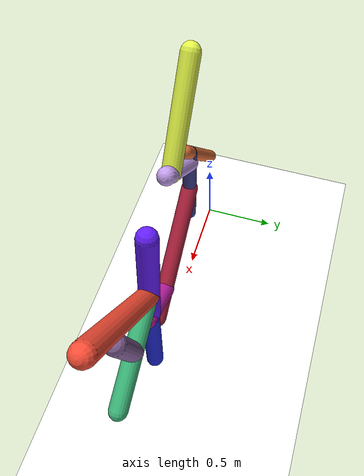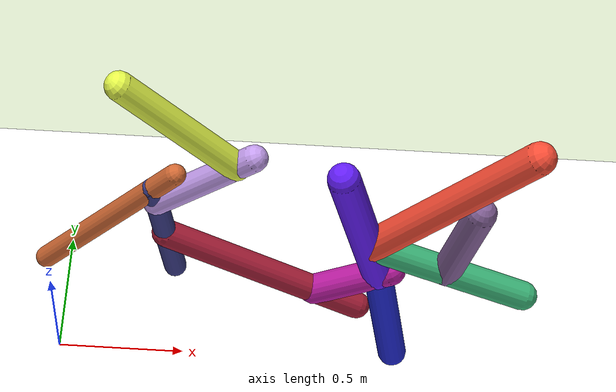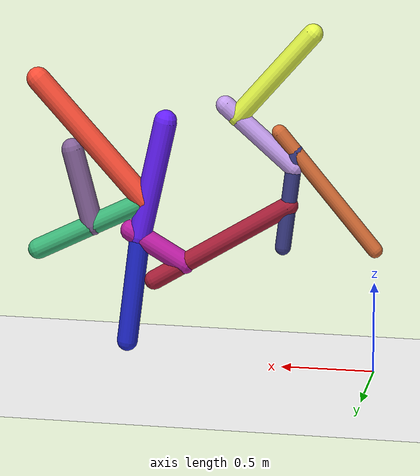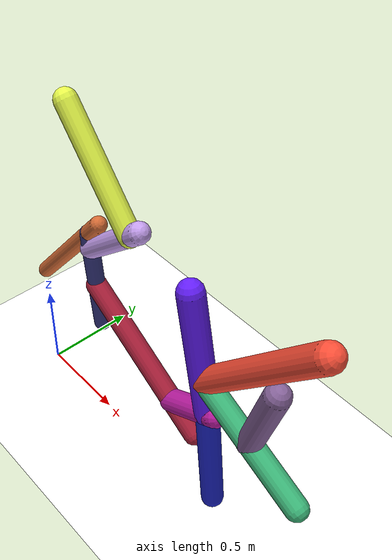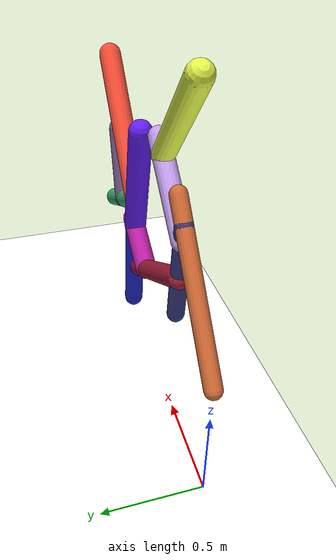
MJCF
<mujoco model="morphology">
  <option timestep="0.01"/>
  <default>
    <default class="/"/>
    <default class="0/"/>
    <default class="0/1/"/>
    <default class="0/1/2/"/>
    <default class="0/1/2/3/"/>
    <default class="0/1/2/3/4/"/>
    <default class="0/1/2/3/4/5/"/>
    <default class="0/1/2/3/4/5/6/"/>
    <default class="0/1/2/3/4/5/7/"/>
    <default class="0/1/2/3/8/"/>
    <default class="0/1/9/"/>
    <default class="0/1/9/10/"/>
  </default>
  <asset>
    <texture name="texplane" type="2d" builtin="checker" rgb1="0.10000000000000001 0.20000000000000001 0.29999999999999999" rgb2="0.20000000000000001 0.29999999999999999 0.40000000000000002" width="300" height="300"/>
    <material name="MatPlane" class="/" texture="texplane" texrepeat="20 20" specular="1" shininess="1" reflectance="0.5"/>
  </asset>
  <worldbody>
    <light name="//unnamed_light_0" class="/" directional="true" pos="0 0 1.5" dir="0 0 -1.3" cutoff="100" exponent="1" diffuse="1 1 1" specular="0.10000000000000001 0.10000000000000001 0.10000000000000001"/>
    <geom name="ground" class="/" type="plane" size="15 15 0.5" material="MatPlane" rgba="1 1 1 1"/>
    <site name="body" class="/" size="9.9999999999999995e-07 9.9999999999999995e-07 9.9999999999999995e-07" pos="0 0 0.68472770452499387"/>
    <body pos="0 0 0.68472770452499387" name="0/">
      <joint name="0/rootx/" class="/" type="slide" axis="1 0 0" limited="false" stiffness="0" armature="0" damping="0"/>
      <joint name="0/rootz/" class="/" type="slide" axis="0 0 1" limited="false" stiffness="0" armature="0" damping="0"/>
      <joint name="0/rooty/" class="/" type="hinge" axis="0 1 0" limited="false" stiffness="0" armature="0" damping="0"/>
      <geom name="0/geom" class="0/" type="capsule" contype="1" conaffinity="1" condim="3" size="0.041212058768549144" rgba="0.83018963351423436 0.41883523808006795 0.20847389496993352 1" friction="0.59999999999999998 0.10000000000000001 0.10000000000000001" fromto="0 0 0 0.51901632084161098 0 0.62548990769737012"/>
      <site name="0/end0" class="0/" size="0.0050000000000000001" pos="0.51901632084161098 0 0.62548990769737012"/>
      <site name="0/attach1" class="0/" size="9.9999999999999995e-07 9.9999999999999995e-07 9.9999999999999995e-07" pos="0.43220344373358316 0 0.52086780563862878"/>
      <body pos="0.43220344373358316 0 0.52086780563862878" name="0/1/">
        <joint name="0/1/joint/" class="0/" type="hinge" axis="0 1 0" limited="true" range="-68.451132867138341 68.451132867138341"/>
        <geom name="0/1/geom" class="0/1/" type="capsule" contype="1" conaffinity="1" condim="3" size="0.042711253315807343" rgba="0.23247382269385131 0.23745641974223375 0.53624611811933354 1" friction="0.59999999999999998 0.10000000000000001 0.10000000000000001" fromto="0 0 0 0.064832744570825995 0 -0.5300096925550315"/>
        <site name="0/1/end1" class="0/1/" size="0.0050000000000000001" pos="0.064832744570825995 0 -0.5300096925550315"/>
        <site name="0/1/attach2" class="0/1/" size="9.9999999999999995e-07 9.9999999999999995e-07 9.9999999999999995e-07" pos="0.036551111596287843 0 -0.29880646805766337"/>
        <body pos="0.036551111596287843 0 -0.29880646805766337" name="0/1/2/">
          <joint name="0/1/2/joint/" class="0/1/" type="hinge" axis="0 1 0" limited="true" range="-63.300547701188549 63.300547701188549"/>
          <geom name="0/1/2/geom" class="0/1/2/" type="capsule" contype="1" conaffinity="1" condim="3" size="0.052908863149111897" rgba="0.66380839651644641 0.12220773544464558 0.22587143090343109 1" friction="0.59999999999999998 0.10000000000000001 0.10000000000000001" fromto="0 0 0 0.73003101790402325 0 -0.4531616211365278"/>
          <site name="0/1/2/end2" class="0/1/2/" size="0.0050000000000000001" pos="0.73003101790402325 0 -0.4531616211365278"/>
          <site name="0/1/2/attach3" class="0/1/2/" size="9.9999999999999995e-07 9.9999999999999995e-07 9.9999999999999995e-07" pos="0.5647555499153869 0 -0.35056803652027063"/>
          <body pos="0.5647555499153869 0 -0.35056803652027063" name="0/1/2/3/">
            <geom name="0/1/2/3/geom" class="0/1/2/3/" type="capsule" contype="1" conaffinity="1" condim="3" size="0.058867451634068216" rgba="0.73649219002325439 0.11163248925774838 0.63678091242998225 1" friction="0.59999999999999998 0.10000000000000001 0.10000000000000001" fromto="0 0 0 0.29096142173472384 0 0.17005381249936913"/>
            <site name="0/1/2/3/end3" class="0/1/2/3/" size="0.0050000000000000001" pos="0.29096142173472384 0 0.17005381249936913"/>
            <site name="0/1/2/3/attach4" class="0/1/2/3/" size="9.9999999999999995e-07 9.9999999999999995e-07 9.9999999999999995e-07" pos="0.24390326231236698 0 0.14255044325108823"/>
            <body pos="0.24390326231236698 0 0.14255044325108823" name="0/1/2/3/4/">
              <joint name="0/1/2/3/4/joint/" class="0/1/2/3/" type="hinge" axis="0 1 0" limited="true" range="-53.8619554987241 53.8619554987241"/>
              <geom name="0/1/2/3/4/geom" class="0/1/2/3/4/" type="capsule" contype="1" conaffinity="1" condim="3" size="0.062577645787015315" rgba="0.39639712089329737 0.11737518273720415 0.99034521360099292 1" friction="0.59999999999999998 0.10000000000000001 0.10000000000000001" fromto="0 0 0 -0.1427345153052445 0 0.64293092772787941"/>
              <site name="0/1/2/3/4/end4" class="0/1/2/3/4/" size="0.0050000000000000001" pos="-0.1427345153052445 0 0.64293092772787941"/>
              <site name="0/1/2/3/4/attach5" class="0/1/2/3/4/" size="9.9999999999999995e-07 9.9999999999999995e-07 9.9999999999999995e-07" pos="-0.045008488732699865 0 0.20273547259862579"/>
              <body pos="-0.045008488732699865 0 0.20273547259862579" name="0/1/2/3/4/5/">
                <joint name="0/1/2/3/4/5/joint/" class="0/1/2/3/4/" type="hinge" axis="0 1 0" limited="true" range="-35.358888998981129 35.358888998981129"/>
                <geom name="0/1/2/3/4/5/geom" class="0/1/2/3/4/5/" type="capsule" contype="1" conaffinity="1" condim="3" size="0.056767312793260374" rgba="0.23657962856694648 0.72356748058596565 0.47967331139213387 1" friction="0.59999999999999998 0.10000000000000001 0.10000000000000001" fromto="0 0 0 0.60558858238879254 0 -0.30553550327737283"/>
                <site name="0/1/2/3/4/5/end5" class="0/1/2/3/4/5/" size="0.0050000000000000001" pos="0.60558858238879254 0 -0.30553550327737283"/>
                <site name="0/1/2/3/4/5/attach6" class="0/1/2/3/4/5/" size="9.9999999999999995e-07 9.9999999999999995e-07 9.9999999999999995e-07" pos="0.013373095677850675 0 -0.0067470814958088994"/>
                <body pos="0.013373095677850675 0 -0.0067470814958088994" name="0/1/2/3/4/5/6/">
                  <joint name="0/1/2/3/4/5/6/joint/" class="0/1/2/3/4/5/" type="hinge" axis="0 1 0" limited="true" range="-52.1940910782657 52.1940910782657"/>
                  <geom name="0/1/2/3/4/5/6/geom" class="0/1/2/3/4/5/6/" type="capsule" contype="1" conaffinity="1" condim="3" size="0.063043057651530343" rgba="0.97977075314847484 0.30414131996817495 0.21226558454403177 1" friction="0.59999999999999998 0.10000000000000001 0.10000000000000001" fromto="0 0 0 0.58153101500107263 0 0.65148342249913327"/>
                  <site name="0/1/2/3/4/5/6/end6" class="0/1/2/3/4/5/6/" size="0.0050000000000000001" pos="0.58153101500107263 0 0.65148342249913327"/>
                </body>
                <site name="0/1/2/3/4/5/attach7" class="0/1/2/3/4/5/" size="9.9999999999999995e-07 9.9999999999999995e-07 9.9999999999999995e-07" pos="0.30535588305799272 0 -0.15406014268104706"/>
                <body pos="0.30535588305799272 0 -0.15406014268104706" name="0/1/2/3/4/5/7/">
                  <joint name="0/1/2/3/4/5/7/joint/" class="0/1/2/3/4/5/" type="hinge" axis="0 1 0" limited="true" range="-47.63771767938497 47.63771767938497"/>
                  <geom name="0/1/2/3/4/5/7/geom" class="0/1/2/3/4/5/7/" type="capsule" contype="1" conaffinity="1" condim="3" size="0.059342931774164498" rgba="0.52184678210294033 0.38467028560423433 0.6004001896188651 1" friction="0.59999999999999998 0.10000000000000001 0.10000000000000001" fromto="0 0 0 0.10654140717847005 0 0.41704192465679668"/>
                  <site name="0/1/2/3/4/5/7/end7" class="0/1/2/3/4/5/7/" size="0.0050000000000000001" pos="0.10654140717847005 0 0.41704192465679668"/>
                </body>
              </body>
            </body>
            <site name="0/1/2/3/attach8" class="0/1/2/3/" size="9.9999999999999995e-07 9.9999999999999995e-07 9.9999999999999995e-07" pos="0.24316832680402278 0 0.14212090663283153"/>
            <body pos="0.24316832680402278 0 0.14212090663283153" name="0/1/2/3/8/">
              <joint name="0/1/2/3/8/joint/" class="0/1/2/3/" type="hinge" axis="0 1 0" limited="true" range="-39.854948089733071 39.854948089733071"/>
              <geom name="0/1/2/3/8/geom" class="0/1/2/3/8/" type="capsule" contype="1" conaffinity="1" condim="3" size="0.056420715849412134" rgba="0.13060134839978299 0.16559783883817358 0.83791411363860613 1" friction="0.59999999999999998 0.10000000000000001 0.10000000000000001" fromto="0 0 0 0.073705996849137145 0 -0.59834192374661033"/>
              <site name="0/1/2/3/8/end8" class="0/1/2/3/8/" size="0.0050000000000000001" pos="0.073705996849137145 0 -0.59834192374661033"/>
            </body>
          </body>
        </body>
        <site name="0/1/attach9" class="0/1/" size="9.9999999999999995e-07 9.9999999999999995e-07 9.9999999999999995e-07" pos="0.010213578395905925 0 -0.08349631935737506"/>
        <body pos="0.010213578395905925 0 -0.08349631935737506" name="0/1/9/">
          <geom name="0/1/9/geom" class="0/1/9/" type="capsule" contype="1" conaffinity="1" condim="3" size="0.050999841721504624" rgba="0.77208093125670463 0.62163370756066905 0.93574140135180295 1" friction="0.59999999999999998 0.10000000000000001 0.10000000000000001" fromto="0 0 0 0.36843685573220575 0 0.32426510426872746"/>
          <site name="0/1/9/end9" class="0/1/9/" size="0.0050000000000000001" pos="0.36843685573220575 0 0.32426510426872746"/>
          <site name="0/1/9/attach10" class="0/1/9/" size="9.9999999999999995e-07 9.9999999999999995e-07 9.9999999999999995e-07" pos="0.30193731947294794 0 0.2657381715706495"/>
          <body pos="0.30193731947294794 0 0.2657381715706495" name="0/1/9/10/">
            <joint name="0/1/9/10/joint/" class="0/1/9/" type="hinge" axis="0 1 0" limited="true" range="-41.817591811661629 41.817591811661629"/>
            <geom name="0/1/9/10/geom" class="0/1/9/10/" type="capsule" contype="1" conaffinity="1" condim="3" size="0.054324128665168309" rgba="0.90600639085866697 0.98423225454630403 0.28830320589449299 1" friction="0.59999999999999998 0.10000000000000001 0.10000000000000001" fromto="0 0 0 -0.39973060771665497 0 0.46581930534185068"/>
            <site name="0/1/9/10/end10" class="0/1/9/10/" size="0.0050000000000000001" pos="-0.39973060771665497 0 0.46581930534185068"/>
          </body>
        </body>
      </body>
      <camera name="0/side" class="0/" mode="trackcom" pos="0.40000000000000002 -4 0.20000000000000001" quat="0.70699999999999996 0.70699999999999996 0 0"/>
    </body>
  </worldbody>
  <actuator>
    <motor name="0/1/motor" class="0/1/" ctrllimited="true" ctrlrange="-1 1" gear="74" joint="0/1/joint/"/>
    <motor name="0/1/2/motor" class="0/1/2/" ctrllimited="true" ctrlrange="-1 1" gear="61" joint="0/1/2/joint/"/>
    <motor name="0/1/2/3/4/motor" class="0/1/2/3/4/" ctrllimited="true" ctrlrange="-1 1" gear="56" joint="0/1/2/3/4/joint/"/>
    <motor name="0/1/2/3/4/5/motor" class="0/1/2/3/4/5/" ctrllimited="true" ctrlrange="-1 1" gear="52" joint="0/1/2/3/4/5/joint/"/>
    <motor name="0/1/2/3/4/5/6/motor" class="0/1/2/3/4/5/6/" ctrllimited="true" ctrlrange="-1 1" gear="55" joint="0/1/2/3/4/5/6/joint/"/>
    <motor name="0/1/2/3/4/5/7/motor" class="0/1/2/3/4/5/7/" ctrllimited="true" ctrlrange="-1 1" gear="80" joint="0/1/2/3/4/5/7/joint/"/>
    <motor name="0/1/2/3/8/motor" class="0/1/2/3/8/" ctrllimited="true" ctrlrange="-1 1" gear="89" joint="0/1/2/3/8/joint/"/>
    <motor name="0/1/9/10/motor" class="0/1/9/10/" ctrllimited="true" ctrlrange="-1 1" gear="70" joint="0/1/9/10/joint/"/>
  </actuator>
  <sensor>
    <subtreelinvel name="velocity" body="0/"/>
  </sensor>
</mujoco>
